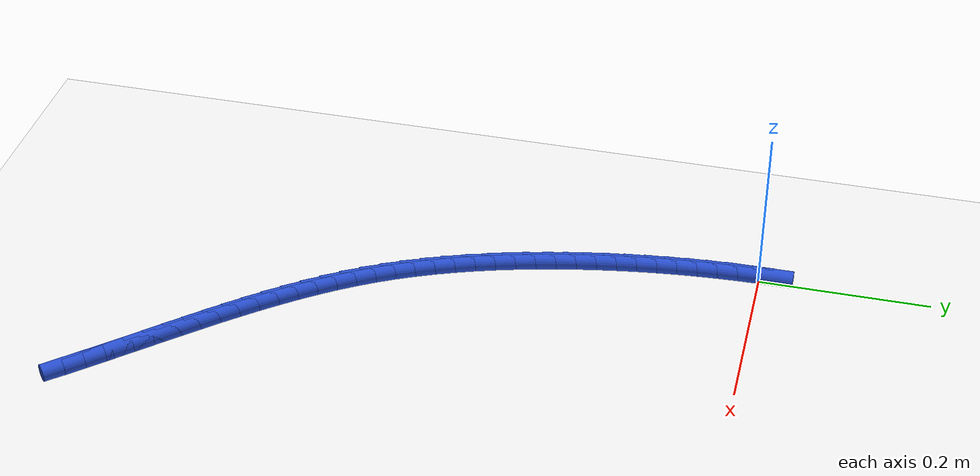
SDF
<sdf version="1.6">
 <world name="default">
  <model name="ground_plane">
   <static>1</static>
   <link name="link">
    <collision name="collision">
     <geometry><plane><normal>0 0 1</normal><size>100 100</size></plane></geometry>
     <surface><friction><ode><mu>100</mu><mu2>50</mu2></ode></friction></surface>
    </collision>
    <visual name="visual">
     <cast_shadows>0</cast_shadows>
     <geometry><plane><normal>0 0 1</normal><size>100 100</size></plane></geometry>
     <material>
      <script><uri>file://media/materials/scripts/gazebo.material</uri><name>Gazebo/WhiteGlow</name></script>
     </material>
    </visual>
   </link>
  </model>
  <model name="line">
   <link name="link_0">
    <pose>-1.9081958235744878e-17 -1.3877787807814457e-17 0.01 0 1.57 -1.5651864543151945</pose>
    <collision name="collision">
     <geometry><cylinder><radius>0.01</radius><length>0.08</length></cylinder></geometry>
    </collision>
    <visual name="visual">
     <material>
      <script><name>Gazebo/Blue</name><uri>file://media/materials/scripts/gazebo.material</uri></script>
     </material>
     <geometry><cylinder><radius>0.01</radius><length>0.08</length></cylinder></geometry>
    </visual>
   </link>
   <link name="link_246">
    <pose>0.3240617198004732 -0.7151393659809427 0.01 0 1.57 -0.847208780916832</pose>
    <collision name="collision">
     <geometry><cylinder><radius>0.01</radius><length>0.08</length></cylinder></geometry>
    </collision>
    <visual name="visual">
     <material>
      <script><name>Gazebo/Blue</name><uri>file://media/materials/scripts/gazebo.material</uri></script>
     </material>
     <geometry><cylinder><radius>0.01</radius><length>0.08</length></cylinder></geometry>
    </visual>
   </link>
   <link name="link_247">
    <pose>0.30831580006576437 -0.6973158523113969 0.01 0 1.57 -0.8391139458286849</pose>
    <collision name="collision">
     <geometry><cylinder><radius>0.01</radius><length>0.08</length></cylinder></geometry>
    </collision>
    <visual name="visual">
     <material>
      <script><name>Gazebo/Blue</name><uri>file://media/materials/scripts/gazebo.material</uri></script>
     </material>
     <geometry><cylinder><radius>0.01</radius><length>0.08</length></cylinder></geometry>
    </visual>
   </link>
   <link name="link_248">
    <pose>0.29237754012449396 -0.6795662817514746 0.01 0 1.57 -0.8343988719673199</pose>
    <collision name="collision">
     <geometry><cylinder><radius>0.01</radius><length>0.08</length></cylinder></geometry>
    </collision>
    <visual name="visual">
     <material>
      <script><name>Gazebo/Blue</name><uri>file://media/materials/scripts/gazebo.material</uri></script>
     </material>
     <geometry><cylinder><radius>0.01</radius><length>0.08</length></cylinder></geometry>
    </visual>
   </link>
   <link name="link_249">
    <pose>0.2763183632945157 -0.661850796708771 0.01 0 1.57 -0.833105179212191</pose>
    <collision name="collision">
     <geometry><cylinder><radius>0.01</radius><length>0.08</length></cylinder></geometry>
    </collision>
    <visual name="visual">
     <material>
      <script><name>Gazebo/Blue</name><uri>file://media/materials/scripts/gazebo.material</uri></script>
     </material>
     <geometry><cylinder><radius>0.01</radius><length>0.08</length></cylinder></geometry>
    </visual>
   </link>
   <link name="link_250">
    <pose>0.26021141436797385 -0.6441287414533102 0.01 0 1.57 -0.8352139962906096</pose>
    <collision name="collision">
     <geometry><cylinder><radius>0.01</radius><length>0.08</length></cylinder></geometry>
    </collision>
    <visual name="visual">
     <material>
      <script><name>Gazebo/Blue</name><uri>file://media/materials/scripts/gazebo.material</uri></script>
     </material>
     <geometry><cylinder><radius>0.01</radius><length>0.08</length></cylinder></geometry>
    </visual>
   </link>
   <link name="link_251">
    <pose>0.2441298381370121 -0.6263594602551149 0.01 0 1.57 -0.8407226135745559</pose>
    <collision name="collision">
     <geometry><cylinder><radius>0.01</radius><length>0.08</length></cylinder></geometry>
    </collision>
    <visual name="visual">
     <material>
      <script><name>Gazebo/Blue</name><uri>file://media/materials/scripts/gazebo.material</uri></script>
     </material>
     <geometry><cylinder><radius>0.01</radius><length>0.08</length></cylinder></geometry>
    </visual>
   </link>
   <link name="link_252">
    <pose>0.22814677939377392 -0.6085022973842077 0.01 0 1.57 -0.8496436675307548</pose>
    <collision name="collision">
     <geometry><cylinder><radius>0.01</radius><length>0.08</length></cylinder></geometry>
    </collision>
    <visual name="visual">
     <material>
      <script><name>Gazebo/Blue</name><uri>file://media/materials/scripts/gazebo.material</uri></script>
     </material>
     <geometry><cylinder><radius>0.01</radius><length>0.08</length></cylinder></geometry>
    </visual>
   </link>
   <link name="link_253">
    <pose>0.21233538293040427 -0.5905165971106131 0.01 0 1.57 -0.862003306347199</pose>
    <collision name="collision">
     <geometry><cylinder><radius>0.01</radius><length>0.08</length></cylinder></geometry>
    </collision>
    <visual name="visual">
     <material>
      <script><name>Gazebo/Blue</name><uri>file://media/materials/scripts/gazebo.material</uri></script>
     </material>
     <geometry><cylinder><radius>0.01</radius><length>0.08</length></cylinder></geometry>
    </visual>
   </link>
   <link name="link_254">
    <pose>0.1967687935390467 -0.572361703704354 0.01 0 1.57 -0.8778382517940515</pose>
    <collision name="collision">
     <geometry><cylinder><radius>0.01</radius><length>0.08</length></cylinder></geometry>
    </collision>
    <visual name="visual">
     <material>
      <script><name>Gazebo/Blue</name><uri>file://media/materials/scripts/gazebo.material</uri></script>
     </material>
     <geometry><cylinder><radius>0.01</radius><length>0.08</length></cylinder></geometry>
    </visual>
   </link>
   <link name="link_255">
    <pose>0.18152015601184499 -0.5539969614354533 0.01 0 1.57 -0.8971916189818653</pose>
    <collision name="collision">
     <geometry><cylinder><radius>0.01</radius><length>0.08</length></cylinder></geometry>
    </collision>
    <visual name="visual">
     <material>
      <script><name>Gazebo/Blue</name><uri>file://media/materials/scripts/gazebo.material</uri></script>
     </material>
     <geometry><cylinder><radius>0.01</radius><length>0.08</length></cylinder></geometry>
    </visual>
   </link>
   <link name="link_256">
    <pose>0.16666261514094324 -0.5353817145739346 0.01 0 1.57 -0.9201073248803617</pose>
    <collision name="collision">
     <geometry><cylinder><radius>0.01</radius><length>0.08</length></cylinder></geometry>
    </collision>
    <visual name="visual">
     <material>
      <script><name>Gazebo/Blue</name><uri>file://media/materials/scripts/gazebo.material</uri></script>
     </material>
     <geometry><cylinder><radius>0.01</radius><length>0.08</length></cylinder></geometry>
    </visual>
   </link>
   <link name="link_257">
    <pose>0.1522693157184853 -0.5164753073898207 0.01 0 1.57 -0.9466229219613158</pose>
    <collision name="collision">
     <geometry><cylinder><radius>0.01</radius><length>0.08</length></cylinder></geometry>
    </collision>
    <visual name="visual">
     <material>
      <script><name>Gazebo/Blue</name><uri>file://media/materials/scripts/gazebo.material</uri></script>
     </material>
     <geometry><cylinder><radius>0.01</radius><length>0.08</length></cylinder></geometry>
    </visual>
   </link>
   <link name="link_258">
    <pose>0.13841340253661516 -0.49723708415313533 0.01 0 1.57 -0.9767607535602105</pose>
    <collision name="collision">
     <geometry><cylinder><radius>0.01</radius><length>0.08</length></cylinder></geometry>
    </collision>
    <visual name="visual">
     <material>
      <script><name>Gazebo/Blue</name><uri>file://media/materials/scripts/gazebo.material</uri></script>
     </material>
     <geometry><cylinder><radius>0.01</radius><length>0.08</length></cylinder></geometry>
    </visual>
   </link>
   <link name="link_259">
    <pose>0.1251680203874767 -0.47762638913390126 0.01 0 1.57 -1.0105174640308037</pose>
    <collision name="collision">
     <geometry><cylinder><radius>0.01</radius><length>0.08</length></cylinder></geometry>
    </collision>
    <visual name="visual">
     <material>
      <script><name>Gazebo/Blue</name><uri>file://media/materials/scripts/gazebo.material</uri></script>
     </material>
     <geometry><cylinder><radius>0.01</radius><length>0.08</length></cylinder></geometry>
    </visual>
   </link>
   <link name="link_260">
    <pose>0.11260631406321403 -0.45760256660214227 0.01 0 1.57 -1.0478521289926646</pose>
    <collision name="collision">
     <geometry><cylinder><radius>0.01</radius><length>0.08</length></cylinder></geometry>
    </collision>
    <visual name="visual">
     <material>
      <script><name>Gazebo/Blue</name><uri>file://media/materials/scripts/gazebo.material</uri></script>
     </material>
     <geometry><cylinder><radius>0.01</radius><length>0.08</length></cylinder></geometry>
    </visual>
   </link>
   <link name="link_261">
    <pose>0.10080142835597058 -0.4371249608278805 0.01 0 1.57 -1.08808659142628</pose>
    <collision name="collision">
     <geometry><cylinder><radius>0.01</radius><length>0.08</length></cylinder></geometry>
    </collision>
    <visual name="visual">
     <material>
      <script><name>Gazebo/Blue</name><uri>file://media/materials/scripts/gazebo.material</uri></script>
     </material>
     <geometry><cylinder><radius>0.01</radius><length>0.08</length></cylinder></geometry>
    </visual>
   </link>
   <link name="link_262">
    <pose>0.08981551530740038 -0.41616187380434566 0.01 0 1.57 -1.1273578758935936</pose>
    <collision name="collision">
     <geometry><cylinder><radius>0.01</radius><length>0.08</length></cylinder></geometry>
    </collision>
    <visual name="visual">
     <material>
      <script><name>Gazebo/Blue</name><uri>file://media/materials/scripts/gazebo.material</uri></script>
     </material>
     <geometry><cylinder><radius>0.01</radius><length>0.08</length></cylinder></geometry>
    </visual>
   </link>
   <link name="link_263">
    <pose>0.07964001757001486 -0.3947392268745769 0.01 0 1.57 -1.1641866251040753</pose>
    <collision name="collision">
     <geometry><cylinder><radius>0.01</radius><length>0.08</length></cylinder></geometry>
    </collision>
    <visual name="visual">
     <material>
      <script><name>Gazebo/Blue</name><uri>file://media/materials/scripts/gazebo.material</uri></script>
     </material>
     <geometry><cylinder><radius>0.01</radius><length>0.08</length></cylinder></geometry>
    </visual>
   </link>
   <link name="link_264">
    <pose>0.0702383842666331 -0.37290575262350767 0.01 0 1.57 -1.1986219830169844</pose>
    <collision name="collision">
     <geometry><cylinder><radius>0.01</radius><length>0.08</length></cylinder></geometry>
    </collision>
    <visual name="visual">
     <material>
      <script><name>Gazebo/Blue</name><uri>file://media/materials/scripts/gazebo.material</uri></script>
     </material>
     <geometry><cylinder><radius>0.01</radius><length>0.08</length></cylinder></geometry>
    </visual>
   </link>
   <link name="link_265">
    <pose>0.06157399486419472 -0.35071024039694193 0.01 0 1.57 -1.2307336540140676</pose>
    <collision name="collision">
     <geometry><cylinder><radius>0.01</radius><length>0.08</length></cylinder></geometry>
    </collision>
    <visual name="visual">
     <material>
      <script><name>Gazebo/Blue</name><uri>file://media/materials/scripts/gazebo.material</uri></script>
     </material>
     <geometry><cylinder><radius>0.01</radius><length>0.08</length></cylinder></geometry>
    </visual>
   </link>
   <link name="link_266">
    <pose>0.0536102288296393 -0.32820147954068357 0.01 0 1.57 -1.2606022164159938</pose>
    <collision name="collision">
     <geometry><cylinder><radius>0.01</radius><length>0.08</length></cylinder></geometry>
    </collision>
    <visual name="visual">
     <material>
      <script><name>Gazebo/Blue</name><uri>file://media/materials/scripts/gazebo.material</uri></script>
     </material>
     <geometry><cylinder><radius>0.01</radius><length>0.08</length></cylinder></geometry>
    </visual>
   </link>
   <link name="link_267">
    <pose>0.04631046562990642 -0.30542825940053636 0.01 0 1.57 -1.288314109353473</pose>
    <collision name="collision">
     <geometry><cylinder><radius>0.01</radius><length>0.08</length></cylinder></geometry>
    </collision>
    <visual name="visual">
     <material>
      <script><name>Gazebo/Blue</name><uri>file://media/materials/scripts/gazebo.material</uri></script>
     </material>
     <geometry><cylinder><radius>0.01</radius><length>0.08</length></cylinder></geometry>
    </visual>
   </link>
   <link name="link_268">
    <pose>0.039638084731935724 -0.2824393693223042 0.01 0 1.57 -1.3139575300270854</pose>
    <collision name="collision">
     <geometry><cylinder><radius>0.01</radius><length>0.08</length></cylinder></geometry>
    </collision>
    <visual name="visual">
     <material>
      <script><name>Gazebo/Blue</name><uri>file://media/materials/scripts/gazebo.material</uri></script>
     </material>
     <geometry><cylinder><radius>0.01</radius><length>0.08</length></cylinder></geometry>
    </visual>
   </link>
   <link name="link_269">
    <pose>0.03355646560266681 -0.2592835986517911 0.01 0 1.57 -1.3376191418638965</pose>
    <collision name="collision">
     <geometry><cylinder><radius>0.01</radius><length>0.08</length></cylinder></geometry>
    </collision>
    <visual name="visual">
     <material>
      <script><name>Gazebo/Blue</name><uri>file://media/materials/scripts/gazebo.material</uri></script>
     </material>
     <geometry><cylinder><radius>0.01</radius><length>0.08</length></cylinder></geometry>
    </visual>
   </link>
   <link name="link_270">
    <pose>0.028028987709039103 -0.23600973673480005 0.01 0 1.57 -1.3594051353509662</pose>
    <collision name="collision">
     <geometry><cylinder><radius>0.01</radius><length>0.08</length></cylinder></geometry>
    </collision>
    <visual name="visual">
     <material>
      <script><name>Gazebo/Blue</name><uri>file://media/materials/scripts/gazebo.material</uri></script>
     </material>
     <geometry><cylinder><radius>0.01</radius><length>0.08</length></cylinder></geometry>
    </visual>
   </link>
   <link name="link_271">
    <pose>0.02301946376906401 -0.21266589852971882 0.01 0 1.57 -1.3801872556276682</pose>
    <collision name="collision">
     <geometry><cylinder><radius>0.01</radius><length>0.08</length></cylinder></geometry>
    </collision>
    <visual name="visual">
     <material>
      <script><name>Gazebo/Blue</name><uri>file://media/materials/scripts/gazebo.material</uri></script>
     </material>
     <geometry><cylinder><radius>0.01</radius><length>0.08</length></cylinder></geometry>
    </visual>
   </link>
   <link name="link_272">
    <pose>0.018506556617368716 -0.1892770836872987 0.01 0 1.57 -1.4009508665080306</pose>
    <collision name="collision">
     <geometry><cylinder><radius>0.01</radius><length>0.08</length></cylinder></geometry>
    </collision>
    <visual name="visual">
     <material>
      <script><name>Gazebo/Blue</name><uri>file://media/materials/scripts/gazebo.material</uri></script>
     </material>
     <geometry><cylinder><radius>0.01</radius><length>0.08</length></cylinder></geometry>
    </visual>
   </link>
   <link name="link_273">
    <pose>0.014487140397010706 -0.16583994460637108 0.01 0 1.57 -1.4217250672088646</pose>
    <collision name="collision">
     <geometry><cylinder><radius>0.01</radius><length>0.08</length></cylinder></geometry>
    </collision>
    <visual name="visual">
     <material>
      <script><name>Gazebo/Blue</name><uri>file://media/materials/scripts/gazebo.material</uri></script>
     </material>
     <geometry><cylinder><radius>0.01</radius><length>0.08</length></cylinder></geometry>
    </visual>
   </link>
   <link name="link_274">
    <pose>0.010959203525466777 -0.1423493992350114 0.01 0 1.57 -1.4424779397427012</pose>
    <collision name="collision">
     <geometry><cylinder><radius>0.01</radius><length>0.08</length></cylinder></geometry>
    </collision>
    <visual name="visual">
     <material>
      <script><name>Gazebo/Blue</name><uri>file://media/materials/scripts/gazebo.material</uri></script>
     </material>
     <geometry><cylinder><radius>0.01</radius><length>0.08</length></cylinder></geometry>
    </visual>
   </link>
   <link name="link_275">
    <pose>0.007920734420213736 -0.11880036552129501 0.01 0 1.57 -1.4631776636149905</pose>
    <collision name="collision">
     <geometry><cylinder><radius>0.01</radius><length>0.08</length></cylinder></geometry>
    </collision>
    <visual name="visual">
     <material>
      <script><name>Gazebo/Blue</name><uri>file://media/materials/scripts/gazebo.material</uri></script>
     </material>
     <geometry><cylinder><radius>0.01</radius><length>0.08</length></cylinder></geometry>
    </visual>
   </link>
   <link name="link_276">
    <pose>0.0053697214987283885 -0.09518776141329727 0.01 0 1.57 -1.4837927580828274</pose>
    <collision name="collision">
     <geometry><cylinder><radius>0.01</radius><length>0.08</length></cylinder></geometry>
    </collision>
    <visual name="visual">
     <material>
      <script><name>Gazebo/Blue</name><uri>file://media/materials/scripts/gazebo.material</uri></script>
     </material>
     <geometry><cylinder><radius>0.01</radius><length>0.08</length></cylinder></geometry>
    </visual>
   </link>
   <link name="link_277">
    <pose>0.0033041531784875353 -0.0715065048590936 0.01 0 1.57 -1.504292318035431</pose>
    <collision name="collision">
     <geometry><cylinder><radius>0.01</radius><length>0.08</length></cylinder></geometry>
    </collision>
    <visual name="visual">
     <material>
      <script><name>Gazebo/Blue</name><uri>file://media/materials/scripts/gazebo.material</uri></script>
     </material>
     <geometry><cylinder><radius>0.01</radius><length>0.08</length></cylinder></geometry>
    </visual>
   </link>
   <link name="link_278">
    <pose>0.001722017876967981 -0.047751513806759335 0.01 0 1.57 -1.5246462391544493</pose>
    <collision name="collision">
     <geometry><cylinder><radius>0.01</radius><length>0.08</length></cylinder></geometry>
    </collision>
    <visual name="visual">
     <material>
      <script><name>Gazebo/Blue</name><uri>file://media/materials/scripts/gazebo.material</uri></script>
     </material>
     <geometry><cylinder><radius>0.01</radius><length>0.08</length></cylinder></geometry>
    </visual>
   </link>
   <link name="link_279">
    <pose>0.0006213040116465056 -0.0239177062043692 0.01 0 1.57 -1.5448254283826155</pose>
    <collision name="collision">
     <geometry><cylinder><radius>0.01</radius><length>0.08</length></cylinder></geometry>
    </collision>
    <visual name="visual">
     <material>
      <script><name>Gazebo/Blue</name><uri>file://media/materials/scripts/gazebo.material</uri></script>
     </material>
     <geometry><cylinder><radius>0.01</radius><length>0.08</length></cylinder></geometry>
    </visual>
   </link>
  </model>
 </world>
</sdf>
